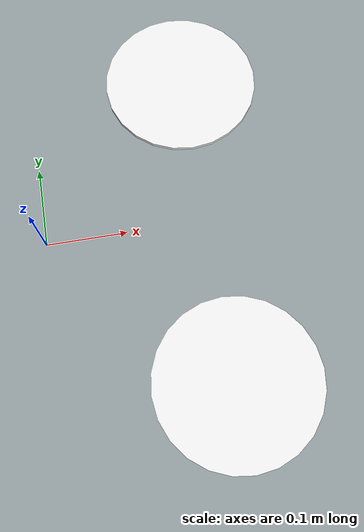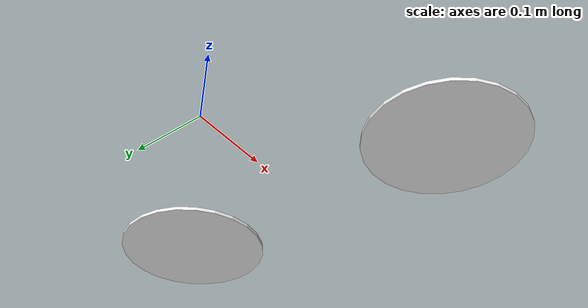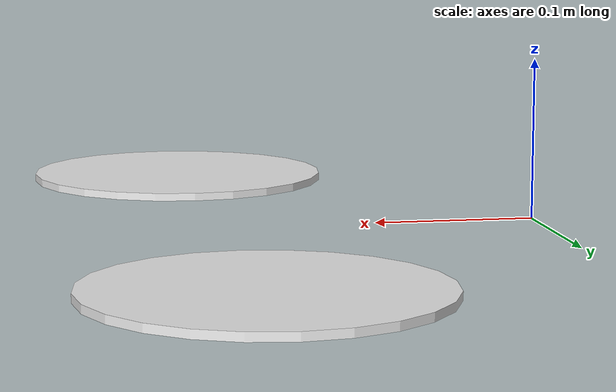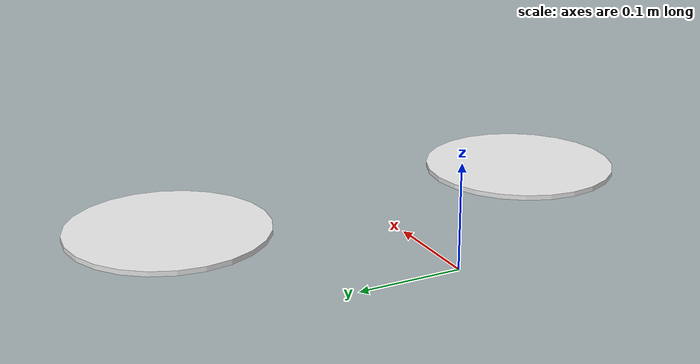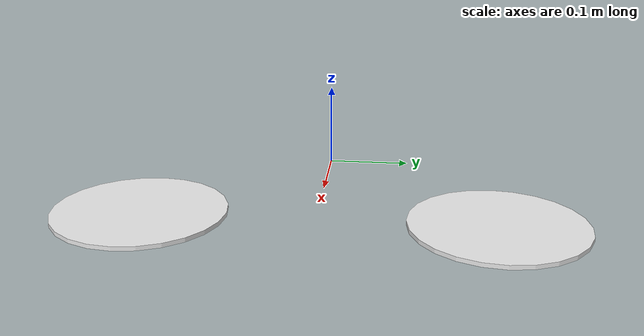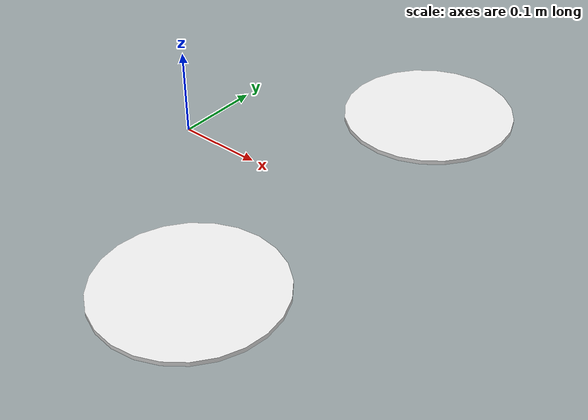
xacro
<?xml version='1.0'?>
<!-- Density of Aluminium 2710 kg/m3 -->
<!-- Density of Plastic 970 kg/m3 -->
<robot xmlns:xacro="http://www.ros.org/wiki/xacro" name = "turntable">
	<xacro:property name="tt_id" value="TT" />

	<xacro:include filename="$(find visual_servoing)/robot/links.xacro"/>

	<link name="world"/>

	<!-- Turntable A -->
	<link name="${tt_id}_A">
		<xacro:linkCylinder density="2710" rad="0.1" len= "0.005" xyz="0 0 0.0025" rpy="0 0 0"/>
	</link>
	<gazebo reference="${tt_id}_A">
		<material>Gazebo/White</material>
		<mu1>1</mu1>
		<mu2>1</mu2>
	</gazebo>

	<!-- Turntable B -->
	<link name="${tt_id}_B">
		<xacro:linkCylinder density="2710" rad="0.1" len= "0.005" xyz="0 0 0.0025" rpy="0 0 0"/>
	</link>
	<gazebo reference="${tt_id}_B">
		<material>Gazebo/White</material>
		<mu1>1</mu1>
		<mu2>1</mu2>
	</gazebo>

	<!-- World to Turntable A -->
	<joint name="${tt_id}_A_joint" type="continuous">
		<parent link="world"/>
		<child link="${tt_id}_A"/>
		<origin xyz="0.2 -0.2 0.0" rpy="0 0 0"/>
		<limit effort="30.0" velocity="${PI/5}"/>
		<axis xyz="0 0 1"/>
	</joint>

	<!-- World to Turntable B -->
	<joint name="${tt_id}_B_joint" type="fixed">
		<parent link="world"/>
		<child link="${tt_id}_B"/>
		<origin xyz="0.2 0.2 0.0" rpy="0 0 0"/>
	</joint>

	<!-- Plugin for the controller -->
	<gazebo>
		<plugin filename="libgazebo_ros_control.so" name="gazebo_ros_control">
			<robotNamespace>/turntable</robotNamespace>
			<robotSimType>gazebo_ros_control/DefaultRobotHWSim</robotSimType>
			<legacyModeNS>true</legacyModeNS>
		</plugin>
	</gazebo>

	<transmission name="${tt_id}_tran">
		<type>transmission_interface/SimpleTransmission</type>
		<joint name="${tt_id}_A_joint">
			<hardwareInterface>hardware_interface/EffortJointInterface</hardwareInterface>
		</joint>
		<actuator name="${tt_id}_motor">
			<hardwareInterface>hardware_interface/EffortJointInterface</hardwareInterface>
			<mechanicalReduction>1</mechanicalReduction>
		</actuator>
	</transmission>

</robot>

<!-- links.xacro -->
<robot xmlns:xacro="http://www.ros.org/wiki/xacro">
	<xacro:property name="PI" value="3.14159" />

	<xacro:macro name="linkCylinder" params="density rad len xyz:='0 0 0' rpy:='0 0 0'" >
		<inertial>
		  <origin xyz="${xyz}" rpy="${rpy}"/>
		  <mass value="${PI*rad*rad*len*density}" />
		  <inertia ixx="${PI*rad*rad*len*density*(3.0*rad**3+len**2)/12.0 }" ixy="0.0" ixz="0.0"
		           iyy="${PI*rad*rad*len*density*(3.0*rad**3+len**2)/12.0 }" iyz="0.0"
		           izz="${PI*rad*rad*len*density*(3.0*rad**3+len**2)/12.0 }" />
		</inertial>

		<visual>
		  <origin xyz="${xyz}" rpy="${rpy}" />
		  <geometry>
        <cylinder radius="${rad}" length="${len}"/>
      </geometry>
		</visual>

		<collision>
		  <origin xyz="${xyz}" rpy="${rpy}" />
		  <geometry>
		  	<cylinder radius="${rad}" length="${len}" />
		  </geometry>
		</collision>
	</xacro:macro>

	<xacro:macro name="linkSphere" params="density rad xyz:='0 0 0' rpy:='0 0 0'" >
		<inertial>
		  <origin xyz="${xyz}" rpy="${rpy}"/>
		  <mass value="${4/3*PI*rad**3*density}" />
		  <inertia ixx="${2*4/3*PI*rad**3*density*rad**2/5.0}" ixy="0.0" ixz="0.0"
		           iyy="${2*4/3*PI*rad**3*density*rad**2/5.0}" iyz="0.0"
		           izz="${2*4/3*PI*rad**3*density*rad**2/5.0}" />
		</inertial>

		<visual>
      <origin xyz="${xyz}" rpy="${rpy}"/>
      <geometry>
        <sphere radius="${rad}" />
      </geometry>
    </visual>

    <collision>
      <origin xyz="${xyz}" rpy="${rpy}"/>
      <geometry>
        <sphere radius="${rad}" />
      </geometry>
    </collision>
	</xacro:macro>

	<xacro:macro name="linkCube" params="density len xyz:='0 0 0' rpy:='0 0 0'" >
		<inertial>
		  <origin xyz="${xyz}" rpy="${rpy}"/>
		  <mass value="${len**3*density}" />
		  <inertia ixx="${len**3*density*len**2/6.0}" ixy="0.0" ixz="0.0"
		           iyy="${len**3*density*len**2/6.0}" iyz="0.0"
		           izz="${len**3*density*len**2/6.0}" />
		</inertial>

		<visual>
      <origin xyz="${xyz}" rpy="${rpy}"/>
      <geometry>
        <box size = "${len} ${len} ${len}" />
      </geometry>
    </visual>

    <collision>
      <origin xyz="${xyz}" rpy="${rpy}"/>
      <geometry>
        <box size = "${len} ${len} ${len}" />
      </geometry>
    </collision>
	</xacro:macro>

	<xacro:macro name="linkCuboid" params="density l b h xyz:='0 0 0' rpy:='0 0 0'" >
		<inertial>
		  <origin xyz="${xyz}" rpy="${rpy}"/>
		  <mass value="${l*b*h*density}" />
		  <inertia ixx="${l*b*h*density*(b*b + h*h)/12.0}" ixy="0.0" ixz="0.0"
		           iyy="${l*b*h*density*(l*l + h*h)/12.0}" iyz="0.0"
		           izz="${l*b*h*density*(b*b + l*l)/12.0}" />
		</inertial>

		<visual>
      <origin xyz="${xyz}" rpy="${rpy}"/>
      <geometry>
        <box size = "${l} ${b} ${h}" />
      </geometry>
    </visual>

    <collision>
      <origin xyz="${xyz}" rpy="${rpy}"/>
      <geometry>
        <box size = "${l} ${b} ${h}" />
      </geometry>
    </collision>
	</xacro:macro>
</robot>
